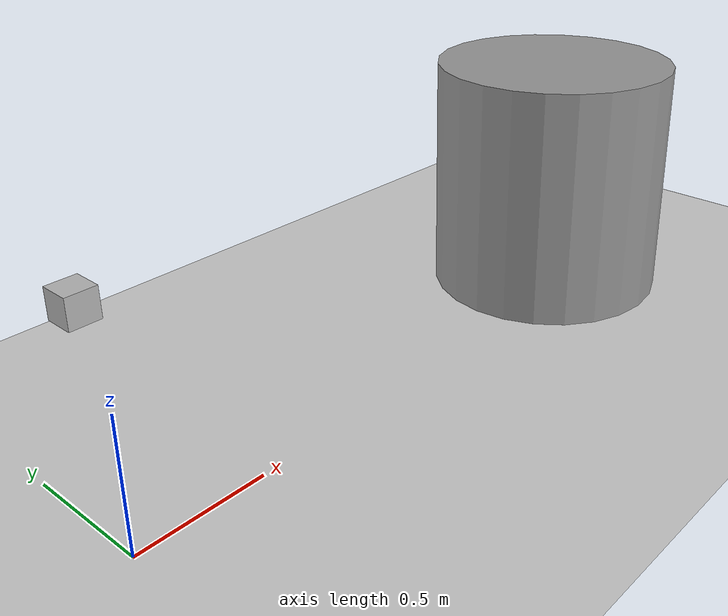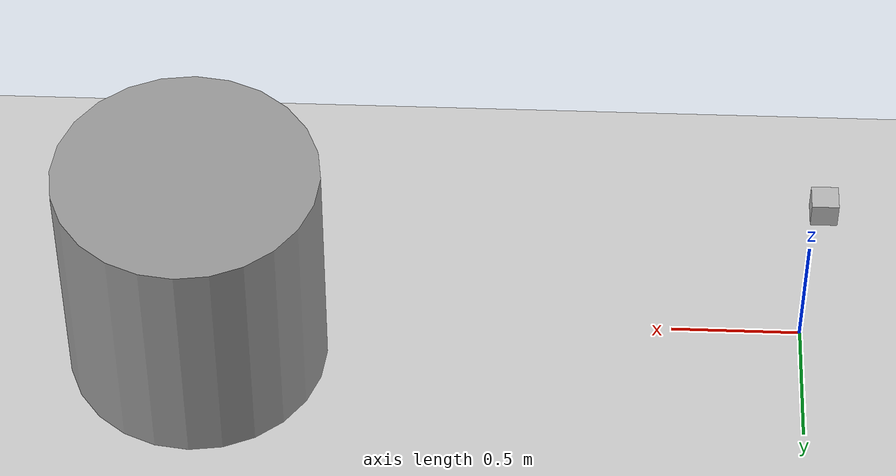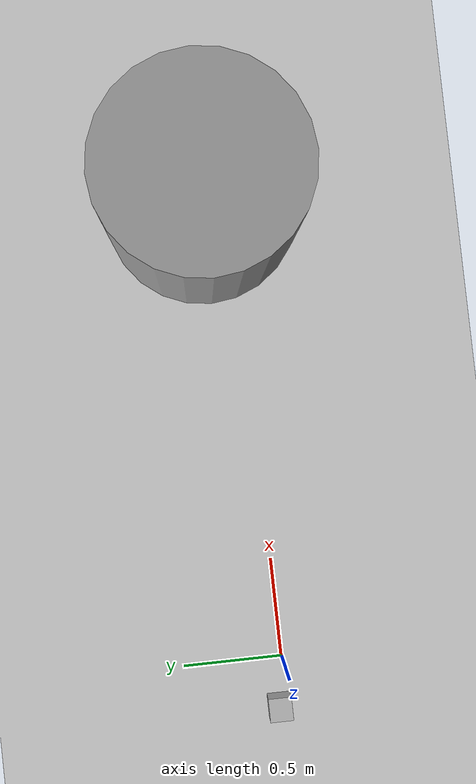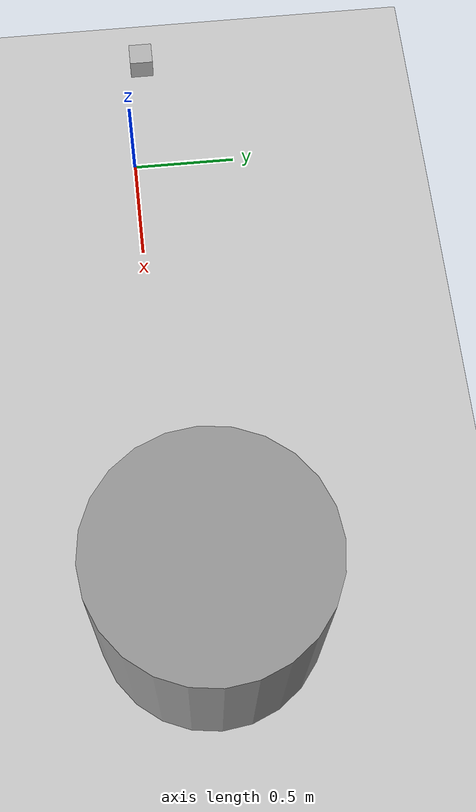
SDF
<sdf version="1.6">
 <world name="default">
  <light name="sun" type="directional">
   <pose>0 0 10 0 -0 0</pose>
   <diffuse>0.8 0.8 0.8 1</diffuse>
   <specular>0.2 0.2 0.2 1</specular>
   <attenuation>
    <range>1000</range>
    <constant>0.9</constant>
    <linear>0.01</linear>
    <quadratic>0.001</quadratic>
   </attenuation>
   <direction>-0.5 0.1 -0.9</direction>
  </light>
  <model name="ground_plane">
   <static>1</static>
   <link name="link">
    <collision name="collision">
     <geometry><plane><normal>0 0 1</normal><size>100 100</size></plane></geometry>
     <surface>
      <contact><collide_bitmask>65535</collide_bitmask></contact>
      <friction><ode><mu>100</mu><mu2>50</mu2></ode></friction>
     </surface>
    </collision>
    <visual name="visual">
     <cast_shadows>0</cast_shadows>
     <geometry><plane><normal>0 0 1</normal><size>100 100</size></plane></geometry>
     <material>
      <script><uri>file://media/materials/scripts/gazebo.material</uri><name>Gazebo/Grey</name></script>
     </material>
    </visual>
   </link>
  </model>
  <gravity>0 0 -9.8</gravity>
  <magnetic_field>6e-06 2.3e-05 -4.2e-05</magnetic_field>
  <atmosphere type="adiabatic"/>
  <physics name="default_physics" default="0" type="ode">
   <max_step_size>0.001</max_step_size>
   <real_time_factor>1</real_time_factor>
   <real_time_update_rate>1000</real_time_update_rate>
  </physics>
  <scene><ambient>0.4 0.4 0.4 1</ambient><background>0.7 0.7 0.7 1</background><shadows>1</shadows></scene>
  <audio><device>default</device></audio>
  <spherical_coordinates>
   <surface_model>EARTH_WGS84</surface_model>
   <latitude_deg>0</latitude_deg>
   <longitude_deg>0</longitude_deg>
   <elevation>0</elevation>
   <heading_deg>0</heading_deg>
  </spherical_coordinates>
  <model name="distorted_camera">
   <link name="link">
    <gravity>0</gravity>
    <pose>0.05 0.05 0.05 0 -0 0</pose>
    <inertial>
     <mass>0.1</mass>
     <inertia>
      <ixx>0.000166667</ixx>
      <iyy>0.000166667</iyy>
      <izz>0.000166667</izz>
      <ixy>0</ixy>
      <ixz>0</ixz>
      <iyz>0</iyz>
     </inertia>
    </inertial>
    <collision name="collision"><geometry><box><size>0.1 0.1 0.1</size></box></geometry></collision>
    <visual name="visual"><geometry><box><size>0.1 0.1 0.1</size></box></geometry></visual>
    <sensor name="camera" type="camera">
     <camera name="__default__">
      <horizontal_fov>1.047</horizontal_fov>
      <image><width>320</width><height>240</height></image>
      <clip><near>0.1</near><far>100</far></clip>
      <distortion>
       <k1>-0.25</k1>
       <k2>0.12</k2>
       <k3>0</k3>
       <p1>-0.00028</p1>
       <p2>-5e-05</p2>
       <center>0.5 0.5</center>
      </distortion>
     </camera>
     <always_on>1</always_on>
     <update_rate>30</update_rate>
     <visualize>1</visualize>
    </sensor>
   </link>
   <pose>-0.073463 0.021639 0.779412 0 -0 0</pose>
  </model>
  <model name="unit_cylinder">
   <pose>2.33567 0.158657 0.499997 3e-06 4e-06 -0</pose>
   <link name="link">
    <inertial>
     <mass>1</mass>
     <inertia><ixx>0.145833</ixx><ixy>0</ixy><ixz>0</ixz><iyy>0.145833</iyy><iyz>0</iyz><izz>0.125</izz></inertia>
    </inertial>
    <collision name="collision">
     <geometry><cylinder><radius>0.5</radius><length>1</length></cylinder></geometry>
    </collision>
    <visual name="visual">
     <geometry><cylinder><radius>0.5</radius><length>1</length></cylinder></geometry>
     <material>
      <script><name>Gazebo/Grey</name><uri>file://media/materials/scripts/gazebo.material</uri></script>
     </material>
    </visual>
   </link>
  </model>
 </world>
</sdf>
